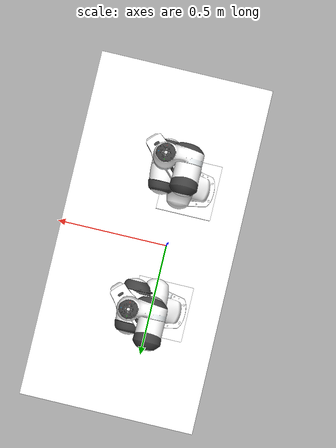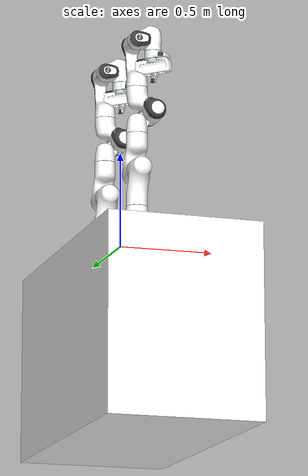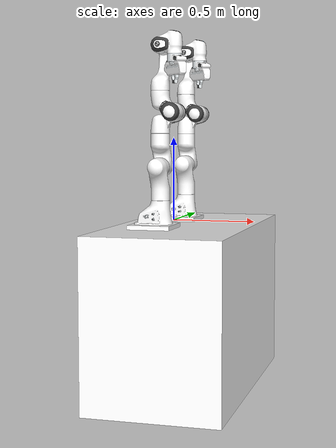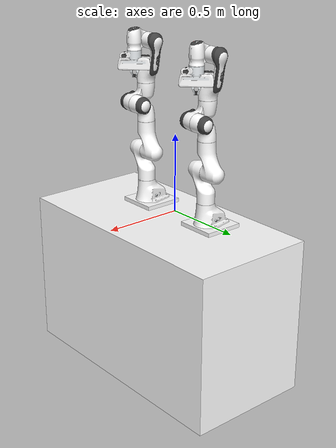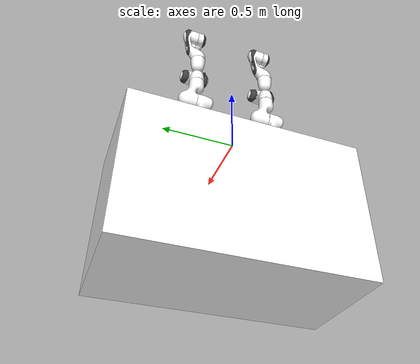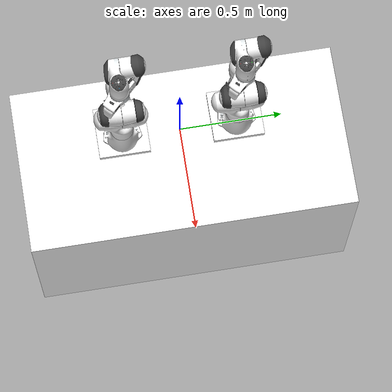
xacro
<?xml version="1.0"?>
<robot xmlns:xacro="http://www.ros.org/wiki/xacro" name="panda">

    <xacro:arg name="left_initial_positions_file"
            default="$(find dual_arm_panda_moveit_config)/config/left_initial_positions.yaml"/>
    <xacro:arg name="right_initial_positions_file"
            default="$(find dual_arm_panda_moveit_config)/config/right_initial_positions.yaml"/>
    <xacro:arg name="ros2_control_hardware_type" default="mock_components" />
    <xacro:arg name="use_sensone_left" default="false" />
    <xacro:arg name="alter_finger_left" default="false" />
    <xacro:arg name="use_sensone_right" default="false" />
    <xacro:arg name="alter_finger_right" default="false" />

    <!-- Xacro imports -->
    <xacro:include filename="panda_arm_macro.xacro" />
    <xacro:include filename="panda_arm_sensone_macro.xacro" />
    <xacro:include filename="panda_arm_alter_finger_macro.xacro" />

    <!-- Root link -->
    <link name="world"/>

    <!-- box shaped table as base for the 2 Pandas -->
    <link name="base">
        <visual>
        <origin xyz="0.09 0 -0.525" rpy="0 0 0" />
        <geometry>
            <box size="0.8 1.6 1" />
        </geometry>
        <material name="White">
            <color rgba="1.0 1.0 1.0 1.0" />
        </material>
        </visual>
        <collision>
        <origin xyz="0.09 0 -0.525" rpy="0 0 0" />
        <geometry>
            <box size="0.8 1.6 1" />
        </geometry>
        </collision>
        <inertial>
        <origin xyz="0.0 0.0 0.0" rpy="0.0 0.0 0.0"/>
        <mass value="10.0"/>
        <inertia ixx="0.001" ixy="0.0" ixz="0.001" iyy="0.0" iyz="0.0" izz="0.001"/>
        </inertial>
    </link>

    <joint name="base_to_world" type="fixed">
        <parent link="world"/>
        <child link="base"/>
        <origin xyz="0.0 0.0 0.0" rpy="0.0 0.0 0.0"/>
    </joint>

    <!-- Left arm -->
    <!-- left arm base -->
    <link name="left_base">
        <visual>
        <origin xyz="-0.04 -0.281 -0.0125" rpy="0 0 0" />
        <geometry>
            <box size="0.25 0.25 0.025" />
        </geometry>
        <material name="White">
            <color rgba="1.0 1.0 1.0 1.0" />
        </material>
        </visual>
        <inertial>
        <origin xyz="0.0 0.0 0.0" rpy="0.0 0.0 0.0"/>
        <mass value="10.0"/>
        <inertia ixx="0.001" ixy="0.0" ixz="0.001" iyy="0.0" iyz="0.0" izz="0.001"/>
        </inertial>
    </link>

    <joint name="left_base_to_world" type="fixed">
        <parent link="base"/>
        <child link="left_base"/>
        <origin xyz="0.0 0.0 0.0" rpy="0.0 0.0 0.0"/>
    </joint>

    <xacro:if value="$(arg use_sensone_left)">
        <xacro:panda_arm_sensone
            name="left_panda"
            prefix="left_"
            parent="base"
            initial_positions_file="$(arg left_initial_positions_file)"
            ros2_control_hardware_type="$(arg ros2_control_hardware_type)">
            <origin xyz="0 -0.281 0.0" rpy="0 0 0" />
        </xacro:panda_arm_sensone>
    </xacro:if>
    <xacro:unless value="$(arg use_sensone_left)">
        <xacro:if value="$(arg alter_finger_left)">
            <xacro:panda_arm_alter_finger
                name="left_panda"
                prefix="left_"
                parent="base"
                initial_positions_file="$(arg left_initial_positions_file)"
                ros2_control_hardware_type="$(arg ros2_control_hardware_type)">
                <origin xyz="0 -0.281 0.0" rpy="0 0 0" />
            </xacro:panda_arm_alter_finger>
        </xacro:if>
        <xacro:unless value="$(arg alter_finger_left)">
        <xacro:panda_arm
            name="left_panda"
            prefix="left_"
            parent="base"
            initial_positions_file="$(arg left_initial_positions_file)"
            ros2_control_hardware_type="$(arg ros2_control_hardware_type)">
            <origin xyz="0 -0.281 0.0" rpy="0 0 0" />
        </xacro:panda_arm>
        </xacro:unless>
    </xacro:unless>

    <!-- Right arm -->
    <!-- right arm base -->
    <link name="right_base">
        <visual>
        <origin xyz="-0.04 0.281 -0.0125" rpy="0 0 0" />
        <geometry>
            <box size="0.25 0.25 0.025" />
        </geometry>
        <material name="White">
            <color rgba="1.0 1.0 1.0 1.0" />
        </material>
        </visual>
        <inertial>
        <origin xyz="0.0 0.0 0.0" rpy="0.0 0.0 0.0"/>
        <mass value="10.0"/>
        <inertia ixx="0.001" ixy="0.0" ixz="0.001" iyy="0.0" iyz="0.0" izz="0.001"/>
        </inertial>
    </link>

    <joint name="right_base_to_world" type="fixed">
        <parent link="base"/>
        <child link="right_base"/>
        <origin xyz="0.0 0.0 0.0" rpy="0.0 0.0 0.0"/>
    </joint>

    <xacro:if value="$(arg use_sensone_right)">
        <xacro:panda_arm_sensone
            name="right_panda"
            prefix="right_"
            parent="base"
            initial_positions_file="$(arg right_initial_positions_file)"
            ros2_control_hardware_type="$(arg ros2_control_hardware_type)">
            <origin xyz="0 0.281 0.0" rpy="0 0 0" />
        </xacro:panda_arm_sensone>
    </xacro:if>
    <xacro:unless value="$(arg use_sensone_right)">
        <xacro:if value="$(arg alter_finger_right)">
            <xacro:panda_arm_alter_finger
                name="right_panda"
                prefix="right_"
                parent="base"
                initial_positions_file="$(arg right_initial_positions_file)"
                ros2_control_hardware_type="$(arg ros2_control_hardware_type)">
                <origin xyz="0 0.281 0.0" rpy="0 0 0" />
            </xacro:panda_arm_alter_finger>
        </xacro:if>
        <xacro:unless value="$(arg alter_finger_right)">
        <xacro:panda_arm
            name="right_panda"
            prefix="right_"
            parent="base"
            initial_positions_file="$(arg right_initial_positions_file)"
            ros2_control_hardware_type="$(arg ros2_control_hardware_type)">
            <origin xyz="0 0.281 0.0" rpy="0 0 0" />
        </xacro:panda_arm>
        </xacro:unless>
    </xacro:unless>
</robot>

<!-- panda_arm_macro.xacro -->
<robot xmlns:xacro="http://www.ros.org/wiki/xacro">

    <xacro:macro name="panda_arm" params="name prefix parent *origin initial_positions_file ros2_control_hardware_type" >

        <!-- ros2_control -->
        <xacro:include filename="$(find dual_arm_panda_moveit_config)/config/panda.ros2_control.xacro" />
        <xacro:panda_arm_ros2_control name="${name}_arm" initial_positions_file="${initial_positions_file}" prefix="${prefix}" ros2_control_hardware_type="${ros2_control_hardware_type}"/>

        <xacro:include filename="panda_hand.ros2_control.xacro" />
        <xacro:panda_hand_ros2_control name="${name}_hand" prefix="${prefix}" ros2_control_hardware_type="${ros2_control_hardware_type}"/>

        <!-- base_joint fixes base_link to the environment -->
        <joint name="${prefix}base_joint" type="fixed">
            <xacro:insert_block name="origin" />
            <parent link="${parent}" />
            <child link="${prefix}panda_link0" />
        </joint>

        <link name="${prefix}panda_link0">
            <visual>
                <geometry>
                    <mesh filename="package://moveit_resources_panda_description/meshes/visual/link0.dae" />
                </geometry>
            </visual>
            <collision>
                <geometry>
                    <mesh filename="package://moveit_resources_panda_description/meshes/collision/link0.stl" />
                </geometry>
            </collision>
        <inertial>
          <origin xyz="-0.041018 -0.00014 0.049974" rpy="0 0 0" />
          <mass value="0.629769"/>
          <inertia ixx="0.00315" iyy="0.00388" izz="0.004285" ixy="8.2904E-7" ixz="0.00015" iyz="8.2299E-6"/>
        </inertial>
        </link>
        <link name="${prefix}panda_link1">
            <visual>
                <geometry>
                    <mesh filename="package://moveit_resources_panda_description/meshes/visual/link1.dae" />
                </geometry>
            </visual>
            <collision>
                <geometry>
                    <mesh filename="package://moveit_resources_panda_description/meshes/collision/link1.stl" />
                </geometry>
            </collision>
            <inertial>
            <origin xyz="0.003875 0.002081 -0.04762" rpy="0 0 0" />
            <mass value="4.970684"/>
            <inertia ixx="0.70337" iyy="0.70661" izz="0.009117" ixy="-0.000139" ixz="0.006772" iyz="0.019169"/>
            </inertial>
        </link>
        <joint name="${prefix}panda_joint1" type="revolute">
            <safety_controller k_position="100.0" k_velocity="40.0" soft_lower_limit="-2.8973" soft_upper_limit="2.8973" />
            <origin rpy="0 0 0" xyz="0 0 0.333" />
            <parent link="${prefix}panda_link0" />
            <child link="${prefix}panda_link1" />
            <axis xyz="0 0 1" />
            <limit effort="87" lower="-2.9671" upper="2.9671" velocity="2.3925" />
        </joint>
        <link name="${prefix}panda_link2">
            <visual>
                <geometry>
                    <mesh filename="package://moveit_resources_panda_description/meshes/visual/link2.dae" />
                </geometry>
            </visual>
            <collision>
                <geometry>
                    <mesh filename="package://moveit_resources_panda_description/meshes/collision/link2.stl" />
                </geometry>
            </collision>
            <inertial>
            <origin xyz="-0.003141 -0.02872  0.003495" rpy="0 0 0" />
            <mass value="0.646926"/>
            <inertia ixx="0.007962" iyy="2.811E-2" izz="2.5995E-2" ixy="-3.925E-3" ixz="1.0254E-2" iyz="7.04E-4"/>
            </inertial>
        </link>
        <joint name="${prefix}panda_joint2" type="revolute">
            <safety_controller k_position="100.0" k_velocity="40.0" soft_lower_limit="-1.7628" soft_upper_limit="1.7628" />
            <origin rpy="-1.57079632679 0 0" xyz="0 0 0" />
            <parent link="${prefix}panda_link1" />
            <child link="${prefix}panda_link2" />
            <axis xyz="0 0 1" />
            <limit effort="87" lower="-1.8326" upper="1.8326" velocity="2.3925" />
        </joint>
        <link name="${prefix}panda_link3">
            <visual>
                <geometry>
                    <mesh filename="package://moveit_resources_panda_description/meshes/visual/link3.dae" />
                </geometry>
            </visual>
            <collision>
                <geometry>
                    <mesh filename="package://moveit_resources_panda_description/meshes/collision/link3.stl" />
                </geometry>
            </collision>
            <inertial>
            <origin xyz="2.7518E-2 3.9252E-2 -6.6502E-2" rpy="0 0 0" />
            <mass value="3.228604"/>
            <inertia ixx="3.7242E-2" iyy="3.6155E-2" izz="1.083E-2" ixy="-4.761E-3" ixz="-1.1396E-2" iyz="-1.2805E-2"/>
            </inertial>
        </link>
        <joint name="${prefix}panda_joint3" type="revolute">
            <safety_controller k_position="100.0" k_velocity="40.0" soft_lower_limit="-2.8973" soft_upper_limit="2.8973" />
            <origin rpy="1.57079632679 0 0" xyz="0 -0.316 0" />
            <parent link="${prefix}panda_link2" />
            <child link="${prefix}panda_link3" />
            <axis xyz="0 0 1" />
            <limit effort="87" lower="-2.9671" upper="2.9671" velocity="2.3925" />
        </joint>
        <link name="${prefix}panda_link4">
            <visual>
                <geometry>
                    <mesh filename="package://moveit_resources_panda_description/meshes/visual/link4.dae" />
                </geometry>
            </visual>
            <collision>
                <geometry>
                    <mesh filename="package://moveit_resources_panda_description/meshes/collision/link4.stl" />
                </geometry>
            </collision>
            <inertial>
            <origin xyz="-5.317E-2 1.04419E-1 2.7454E-2" rpy="0 0 0" />
            <mass value="3.587895"/>
            <inertia ixx="2.5853E-2" iyy="1.9552E-2" izz="2.8323E-2" ixy="7.796E-3" ixz="-1.332E-3" iyz="8.641E-3"/>
            </inertial>
        </link>
        <joint name="${prefix}panda_joint4" type="revolute">
            <safety_controller k_position="100.0" k_velocity="40.0" soft_lower_limit="-3.0718" soft_upper_limit="0.0175" />
            <origin rpy="1.57079632679 0 0" xyz="0.0825 0 0" />
            <parent link="${prefix}panda_link3" />
            <child link="${prefix}panda_link4" />
            <axis xyz="0 0 1" />
            <limit effort="87" lower="-3.1416" upper="0.0873" velocity="2.3925" />
        </joint>
        <link name="${prefix}panda_link5">
            <visual>
                <geometry>
                    <mesh filename="package://moveit_resources_panda_description/meshes/visual/link5.dae" />
                </geometry>
            </visual>
            <collision>
                <geometry>
                    <mesh filename="package://moveit_resources_panda_description/meshes/collision/link5.stl" />
                </geometry>
            </collision>
            <inertial>
            <origin xyz="-1.1953E-2 4.1065E-2 -3.8437E-2" rpy="0 0 0" />
            <mass value="1.225946"/>
            <inertia ixx="3.5549E-2" iyy="2.9474E-2" izz="8.627E-3" ixy="-2.117E-3" ixz="-4.037E-3" iyz="2.29E-4"/>
            </inertial>
        </link>
        <joint name="${prefix}panda_joint5" type="revolute">
            <safety_controller k_position="100.0" k_velocity="40.0" soft_lower_limit="-2.8973" soft_upper_limit="2.8973" />
            <origin rpy="-1.57079632679 0 0" xyz="-0.0825 0.384 0" />
            <parent link="${prefix}panda_link4" />
            <child link="${prefix}panda_link5" />
            <axis xyz="0 0 1" />
            <limit effort="12" lower="-2.9671" upper="2.9671" velocity="2.8710" />
        </joint>
        <link name="${prefix}panda_link6">
            <visual>
                <geometry>
                    <mesh filename="package://moveit_resources_panda_description/meshes/visual/link6.dae" />
                </geometry>
            </visual>
            <collision>
                <geometry>
                    <mesh filename="package://moveit_resources_panda_description/meshes/collision/link6.stl" />
                </geometry>
            </collision>
            <inertial>
            <origin xyz="6.0149E-2 -1.4117E-2 -1.0517E-2" rpy="0 0 0" />
            <mass value="1.666555"/>
            <inertia ixx="1.964E-3" iyy="4.354E-3" izz="5.433E-3" ixy="1.09E-4" ixz="-1.158E-3" iyz="3.41E-4"/>
            </inertial>
        </link>
        <joint name="${prefix}panda_joint6" type="revolute">
            <safety_controller k_position="100.0" k_velocity="40.0" soft_lower_limit="-0.0175" soft_upper_limit="3.7525" />
            <origin rpy="1.57079632679 0 0" xyz="0 0 0" />
            <parent link="${prefix}panda_link5" />
            <child link="${prefix}panda_link6" />
            <axis xyz="0 0 1" />
            <limit effort="12" lower="-0.0873" upper="3.8223" velocity="2.8710" />
        </joint>
        <link name="${prefix}panda_link7">
            <visual>
                <geometry>
                    <mesh filename="package://moveit_resources_panda_description/meshes/visual/link7.dae" />
                </geometry>
            </visual>
            <collision>
                <geometry>
                    <mesh filename="package://moveit_resources_panda_description/meshes/collision/link7.stl" />
                </geometry>
            </collision>
            <inertial>
            <origin xyz="1.0517E-2 -4.252E-3 6.1597E-2" rpy="0 0 0" />
            <mass value="7.35522E-1"/>
            <inertia ixx="1.2516E-2" iyy="1.0027E-2" izz="4.815E-3" ixy="-4.28E-4" ixz="-1.19E-3" iyz="-7.41E-4"/>
            </inertial>
        </link>
        <joint name="${prefix}panda_joint7" type="revolute">
            <safety_controller k_position="100.0" k_velocity="40.0" soft_lower_limit="-2.8973" soft_upper_limit="2.8973" />
            <origin rpy="1.57079632679 0 0" xyz="0.088 0 0" />
            <parent link="${prefix}panda_link6" />
            <child link="${prefix}panda_link7" />
            <axis xyz="0 0 1" />
            <limit effort="12" lower="-2.9671" upper="2.9671" velocity="2.8710" />
        </joint>
        <link name="${prefix}panda_link8" />
        <joint name="${prefix}panda_joint8" type="fixed">
            <origin rpy="0 0 0" xyz="0 0 0.107" />
            <parent link="${prefix}panda_link7" />
            <child link="${prefix}panda_link8" />
            <axis xyz="0 0 0" />
        </joint>
        <joint name="${prefix}panda_hand_joint" type="fixed">
            <parent link="${prefix}panda_link8" />
            <child link="${prefix}panda_hand" />
            <origin rpy="0 0 -0.785398163397" xyz="0 0 0" />
        </joint>
        <link name="${prefix}panda_hand">
            <visual>
                <geometry>
                    <mesh filename="package://moveit_resources_panda_description/meshes/visual/hand.dae" />
                </geometry>
            </visual>
            <collision>
                <geometry>
                    <mesh filename="package://moveit_resources_panda_description/meshes/collision/hand.stl" />
                </geometry>
            </collision>
            <inertial>
            <origin xyz="-0.01 0 0.03" rpy="0 0 0" />
            <mass value="0.73"/>
            <inertia ixx="0.001" iyy="0.0025" izz="0.0017" ixy="0" ixz="0" iyz="0"/>
            </inertial>
        </link>
        <link name="${prefix}panda_leftfinger">
            <visual>
                <geometry>
                    <mesh filename="package://moveit_resources_panda_description/meshes/visual/finger.dae" />
                </geometry>
            </visual>
            <collision>
                <geometry>
                    <mesh filename="package://moveit_resources_panda_description/meshes/collision/finger.stl" />
                </geometry>
            </collision>
            <inertial>
            <origin xyz="0 0 0" rpy="0 0 0" />
            <mass value="0.015"/>
            <inertia ixx="2.375E-6" iyy="2.375E-6" izz="7.5E-7" ixy="0" ixz="0" iyz="0"/>
            </inertial>
        </link>
        <link name="${prefix}panda_rightfinger">
            <visual>
                <origin rpy="0 0 3.14159265359" xyz="0 0 0" />
                <geometry>
                    <mesh filename="package://moveit_resources_panda_description/meshes/visual/finger.dae" />
                </geometry>
            </visual>
            <collision>
                <origin rpy="0 0 3.14159265359" xyz="0 0 0" />
                <geometry>
                    <mesh filename="package://moveit_resources_panda_description/meshes/collision/finger.stl" />
                </geometry>
            </collision>
            <inertial>
            <origin xyz="0 0 0" rpy="0 0 0" />
            <mass value="0.15"/>
            <inertia ixx="2.375E-6" iyy="2.375E-6" izz="7.5E-7" ixy="0" ixz="0" iyz="0"/>
            </inertial>
        </link>
        <joint name="${prefix}panda_finger_joint1" type="prismatic">
            <parent link="${prefix}panda_hand" />
            <child link="${prefix}panda_leftfinger" />
            <origin rpy="0 0 0" xyz="0 0 0.0584" />
            <axis xyz="0 1 0" />
            <limit effort="20" lower="0.0" upper="0.04" velocity="0.2" />
            <dynamics damping="0.3" />
        </joint>
        <joint name="${prefix}panda_finger_joint2" type="prismatic">
            <parent link="${prefix}panda_hand" />
            <child link="${prefix}panda_rightfinger" />
            <origin rpy="0 0 0" xyz="0 0 0.0584" />
            <axis xyz="0 -1 0" />
            <limit effort="20" lower="0.0" upper="0.04" velocity="0.2" />
            <mimic joint="${prefix}panda_finger_joint1" />
            <dynamics damping="0.3" />
        </joint>
    </xacro:macro>
</robot>
